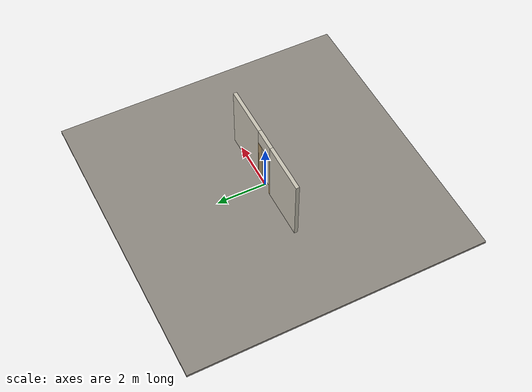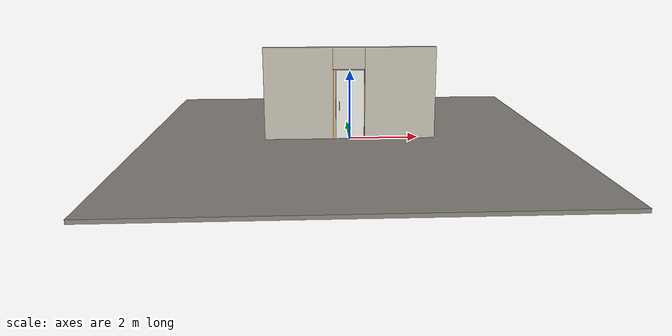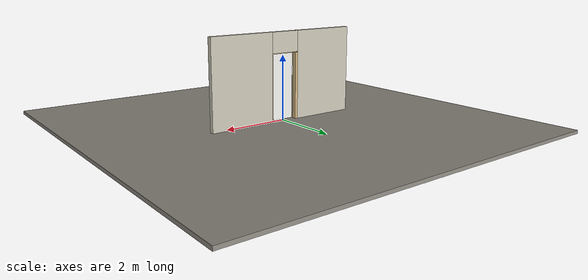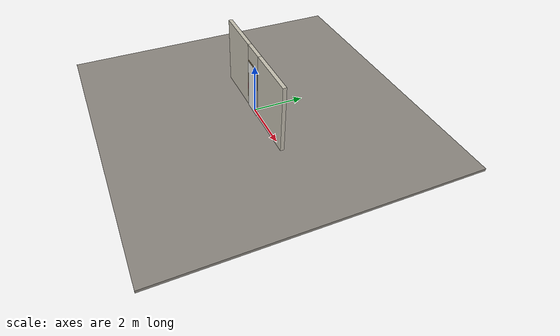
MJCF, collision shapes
<?xml version="1.0" ?>
<mujoco model="db0867_sliding_single_minimal">
  <compiler angle="radian" meshdir="../../hardware" texturedir="../../textures" autolimits="true" inertiafromgeom="false"/>
  <option timestep="0.002" integrator="implicitfast" cone="elliptic" impratio="10" noslip_iterations="3">
    <flag multiccd="enable"/>
  </option>
  <size memory="16M"/>
  <default>
    <geom condim="4" solref="0.005 1" solimp="0.95 0.99 0.001"/>
    <joint solreflimit="0.005 1" solimplimit="0.95 0.99 0.001"/>
    <tendon solreflimit="0.005 1"/>
    <equality solref="0.002 1"/>
  </default>
  <visual>
    <headlight ambient="0.4 0.4 0.4" diffuse="0.7 0.7 0.7" specular="0.2 0.2 0.2"/>
    <quality shadowsize="4096"/>
    <map znear="0.01" zfar="60"/>
  </visual>
  <asset>
    <mesh name="pull_2b47e55ff8" file="pull_2b47e55ff8.obj"/>
    <material name="mat_floor" rgba="0.55 0.53 0.5 1" specular="0.2" shininess="0.15" reflectance="0"/>
    <material name="mat_wall" rgba="0.78 0.76 0.7 1" specular="0.2" shininess="0.1" reflectance="0"/>
    <material name="mat_frame" rgba="0.82 0.7 0.5 1" specular="0.2" shininess="0.45" reflectance="0"/>
    <material name="mat_track" rgba="0.05 0.05 0.05 1" specular="0.38" shininess="0.3" reflectance="0.12"/>
    <material name="mat_leaf" rgba="0.93 0.93 0.91 1" specular="0.23" shininess="0.39" reflectance="0.02"/>
    <material name="mat_leaf_brace" rgba="0.837 0.837 0.819 1" specular="0.2" shininess="0.2" reflectance="0"/>
    <material name="mat_roller" rgba="0.65 0.66 0.68 1" specular="0.74" shininess="0.5" reflectance="0.36"/>
    <material name="mat_op_black_matte_metal" rgba="0.05 0.05 0.05 1" specular="0.38" shininess="0.3" reflectance="0.12"/>
    <material name="mat_hook" rgba="0.75 0.76 0.77 1" specular="0.8" shininess="0.65" reflectance="0.4"/>
    <texture name="skybox" type="skybox" builtin="gradient" rgb1="0.6 0.7 0.85" rgb2="0.9 0.92 0.95" width="256" height="256"/>
  </asset>
  <worldbody>
    <light name="sun" pos="1.5 -2.5 4" dir="-0.3 0.5 -0.8" directional="true" diffuse="0.8 0.8 0.8" specular="0.3 0.3 0.3" castshadow="true"/>
    <light name="fill" pos="-1.5 2.5 3" dir="0.3 -0.5 -0.7" directional="true" diffuse="0.35 0.35 0.4" castshadow="false"/>
    <camera name="robot_view" pos="0 -2.54875 1.73965" xyaxes="1 0 0 0 0.26963 0.962964" fovy="52"/>
    <camera name="far_view" pos="0 2.54875 1.73965" xyaxes="-1 0 0 0 -0.26963 0.962964" fovy="52"/>
    <camera name="iso" pos="1.93705 -2.14095 2.14745" xyaxes="0.741536 0.670913 0 -0.242917 0.268487 0.932151" fovy="46"/>
    <camera name="detail_handle" pos="-0.1365 -0.9435 1.28" xyaxes="0.97561 0.219512 0 -0.070934 0.315262 0.94635" fovy="38"/>
    <geom name="floor" type="box" size="6 6 0.05" pos="0 0 -0.05" material="mat_floor" group="0" contype="1" conaffinity="1" friction="0.8 0.005 0.0001" density="2400"/>
    <geom name="wall_left" type="box" size="1.00225 0.0725 1.35" pos="-1.49775 0 1.35" material="mat_wall" group="0" contype="1" conaffinity="1" friction="0.6 0.005 0.0001" density="800"/>
    <geom name="wall_right" type="box" size="1.03225 0.0725 1.35" pos="1.46775 0 1.35" material="mat_wall" group="0" contype="1" conaffinity="1" friction="0.6 0.005 0.0001" density="800"/>
    <geom name="wall_header" type="box" size="0.4655 0.0725 0.3145" pos="-0.03 0 2.3855" material="mat_wall" group="0" contype="1" conaffinity="1" friction="0.6 0.005 0.0001" density="800"/>
    <geom name="jamb_r" type="box" size="0.0095 0.0725 1.026" pos="0.426 0 1.026" material="mat_frame" group="0" contype="1" conaffinity="1" friction="0.6 0.005 0.0001" density="300"/>
    <geom name="jamb_head" type="box" size="0.4355 0.0725 0.0095" pos="0 0 2.0615" material="mat_frame" group="0" contype="1" conaffinity="1" friction="0.6 0.005 0.0001" density="300"/>
    <geom name="jamb_latch_0" type="box" size="0.0395 0.0725 1.026" pos="-0.456 0 1.026" material="mat_frame" group="0" contype="1" conaffinity="1" friction="0.6 0.005 0.0001" density="300"/>
    <site name="approach_point" pos="0 -1.5 0" quat="1 0 0 0" size="0.05" rgba="0.2 0.9 0.2 0.5" group="4"/>
    <site name="goal_point" pos="0 1.5 0" quat="1 0 0 0" size="0.05" rgba="0.2 0.9 0.2 0.5" group="4"/>
    <site name="door_plane_center" pos="0 0 1.026" quat="1 0 0 0" size="0.02" rgba="0.2 0.9 0.2 0.5" group="4"/>
    <body name="leaf" pos="0 -0.0955 0">
      <inertial pos="-0.001997 -0.000253 1.027823" mass="78.509954" quat="0.499694 0.500403 -0.499587 0.500316" diaginertia="4.347563304 26.850358804 31.195709642"/>
      <joint name="leaf_slide" type="slide" axis="1 0 0" limited="true" range="0 0.813" damping="5.925498" frictionloss="15.398393" armature="0.5"/>
      <geom name="leaf_slab" type="box" size="0.4065 0.003 1.016" pos="0 0 1.028" material="mat_leaf" group="0" contype="1" conaffinity="1" friction="0.45 0.005 0.0001" density="1"/>
      <geom name="leaf_pull_n" type="mesh" mesh="pull_2b47e55ff8" pos="-0.3165 -0.003 1" quat="0 0 -0.707107 0.707107" material="mat_op_black_matte_metal" group="1" contype="0" conaffinity="0" density="3000"/>
      <geom name="leaf_pull_col_n" type="capsule" size="0.006 0.13" pos="-0.3165 -0.048 1" material="mat_op_black_matte_metal" group="3" contype="1" conaffinity="1" rgba="0.8 0.3 0.3 0.25" friction="0.7 0.01 0.0001" density="3000"/>
      <site name="leaf_pull_grip_n" pos="-0.3165 -0.048 1" quat="1 0 0 0" size="0.012" rgba="0.2 0.9 0.2 0.5" group="4"/>
      <site name="leaf_edge_mid" pos="-0.4065 0 1.028" quat="1 0 0 0" size="0.02" rgba="0.2 0.9 0.2 0.5" group="4"/>
    </body>
  </worldbody>
  <sensor>
    <jointpos name="leaf_slide_pos" joint="leaf_slide"/>
    <jointvel name="leaf_slide_vel" joint="leaf_slide"/>
  </sensor>
</mujoco>
